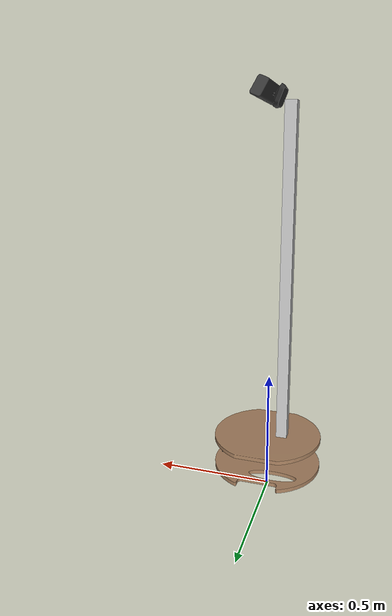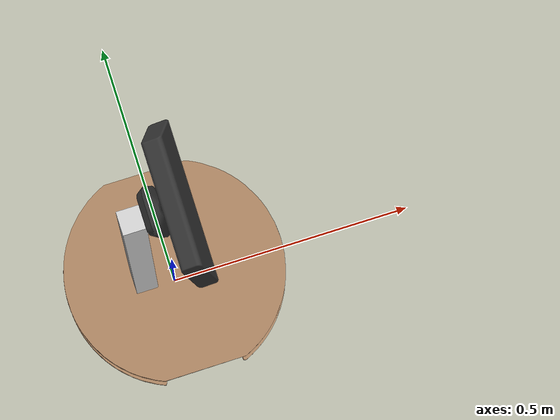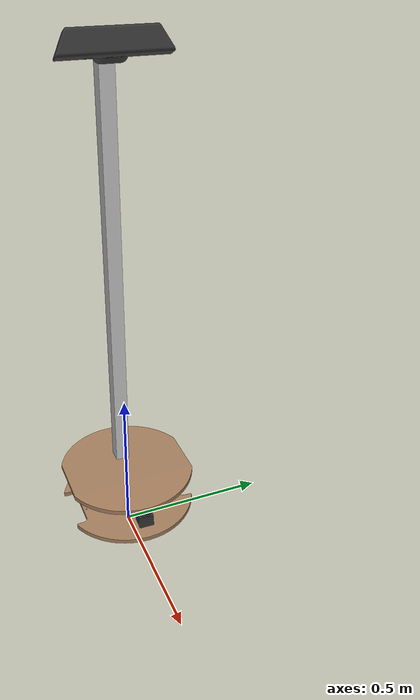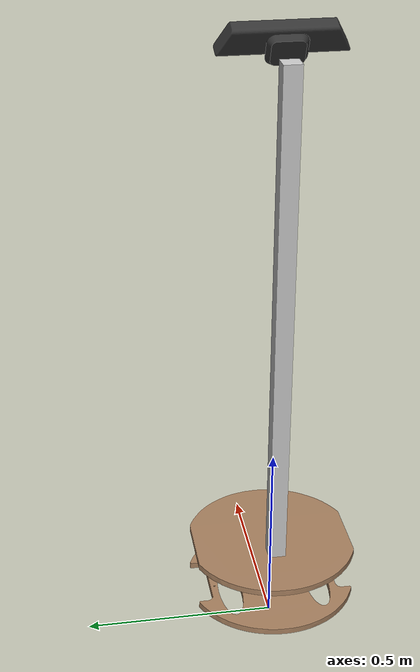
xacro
<?xml version="1.0"?>

<robot name="mitro">
    <!-- Properties (Constants) -->
    <property name="M_PI" value="3.14159265359"/>
    <property name="base_diameter" value="0.4572"/>
    <property name="base_plate_lift" value="0.112"/> <!-- lift top top of plate -->
    <property name="base_plate_height" value="0.0123"/>
    <property name="top_plate_lift" value="0.121"/> <!-- lift to top of plate -->
    <property name="top_plate_height" value="0.0066"/>
    <property name="hokuyo_scan_height" value="0.056"/>
    <property name="sonar_scan_height" value="0.037"/>
    <property name="pole_length" value="1.45"/>
    <property name="pole_x_offset" value="-0.0611"/>
    <property name="kinect_pitch_angle" value="1.18"/>
    <property name="kinect_roll_angle" value="0.06"/>
    <property name="kinect_yaw_angle" value="0.02"/>

    <macro name="mitro">

      <link name="base_link">
      </link>

      <link name="base_plate">
        <visual>
          <origin xyz="0 0 -${base_plate_height}" rpy="0 0 0" />
          <geometry>
            <mesh filename="package://mitro_description/meshes/base_plate.stl"/>
          </geometry>
	  <material name="wood">
	    <color rgba="0.65 0.5 0.37 1"/>
	  </material>
        </visual>
      </link>

      <joint name="base_plate_joint" type="fixed">
        <origin xyz="0 0 ${base_plate_lift}"/>
        <parent link="base_link"/>
        <child link="base_plate"/>
      </joint>

      <link name="base_sonar">
      </link>

      <joint name="base_sonar_joint" type="fixed">
        <origin xyz="0 0 ${sonar_scan_height}"/>
        <parent link="base_plate"/>
        <child link="base_sonar"/>
      </joint>

      <link name="base_laser">
	<visual>
	  <origin xyz="0.0 0.0 ${-hokuyo_scan_height}" rpy="${M_PI/2} 0 ${M_PI/2}" />
	  <geometry>
	    <mesh filename="package://mitro_description/meshes/hokuyo_urg.stl"/>
	  </geometry>
	  <material name="dark grey">
	    <color rgba="0.2 0.2 0.2 1"/>
	  </material>
	</visual>
      </link>

      <joint name="base_laser_joint" type="fixed">
        <origin xyz="${base_diameter/2 - 0.030 - 0.025} 0.002 ${hokuyo_scan_height + 0.021}" rpy="0 0 -0.032" />
        <parent link="base_plate"/>
        <child link="base_laser"/>
      </joint>

      <link name="top_plate">
        <visual>
          <origin xyz="0 0 -${top_plate_height}" rpy="0 0 0" />
          <geometry>
            <mesh filename="package://mitro_description/meshes/top_plate.stl"/>
          </geometry>
	  <material name="wood">
	    <color rgba="0.65 0.5 0.37 1"/>
	  </material>
        </visual>
      </link>

      <joint name="top_plate_joint" type="fixed">
        <origin xyz="0 0 ${top_plate_lift}"/>
        <parent link="base_plate"/>
        <child link="top_plate"/>
      </joint>

      <link name="base_pole_link" />
      <joint name="base_pole_joint" type="fixed">
	<origin xyz="${pole_x_offset} 0 0" rpy="0 0 0"/>
	<parent link="base_plate"/>
	<child link="base_pole_link"/>
      </joint>

      <link name="top_pole_link">
        <visual>
          <origin xyz="0 0 -${pole_length/2}" rpy="0 0 0" />
          <geometry>
	    <box size="0.045 0.045 ${pole_length}"/>
          </geometry>
	  <material name="aluminium">
	    <color rgba="0.8 0.8 0.8 1"/>
	  </material>
        </visual>
      </link>

      <joint name="top_pole_joint" type="fixed">
	<origin xyz="0 0 ${pole_length}" rpy="0 0 0"/>
	<parent link="base_pole_link"/>
	<child link="top_pole_link"/>
      </joint>

<!-- kinect -->

      <link name="kinect_model_link">
	<visual>
	  <origin xyz="0 0 0" rpy="0 0 0" />
	  <geometry>
	    <mesh filename="package://mitro_description/meshes/kinect.stl"/>
	  </geometry>
	  <material name="dark grey">
	    <color rgba="0.2 0.2 0.2 1"/>
	  </material>
	</visual>
      </link>

      <joint name="kinect_model_joint" type="fixed">
        <origin xyz="0.10 0 0" rpy="0 ${kinect_pitch_angle} 0"/>
        <parent link="top_pole_link"/>
        <child link="kinect_model_link"/>
      </joint>

      <link name="kinect_link"/>
      <joint name="kinect_joint" type="fixed">
        <origin xyz="0.11 -0.08 0" rpy="${kinect_roll_angle} ${kinect_pitch_angle} ${kinect_yaw_angle}"/> <!-- TODO: requires meassurement -->
        <parent link="top_pole_link"/>
        <child link="kinect_link"/>
      </joint>

      <link name="kinect_depth_frame"/>
      <joint name="kinect_depth_frame_joint" type="fixed">
	<origin xyz="0 0.049 0"/>
	<parent link="kinect_link"/>
	<child link="kinect_depth_frame"/>
      </joint>

      <link name="kinect_rgb_frame"/>
      <joint name="kinect_rgb_frame_joint" type="fixed">
	<origin xyz="0 0.022 0"/>
	<parent link="kinect_link"/>
	<child link="kinect_rgb_frame"/>
      </joint>

      <link name="kinect_depth_optical_frame"/>
      <joint name="kinect_depth_frame_optical_joint" type="fixed">
	<origin xyz="0 0 0" rpy="-${M_PI/2} 0 -${M_PI/2}"/>
	<parent link="kinect_depth_frame"/>
	<child link="kinect_depth_optical_frame"/>
      </joint>

      <link name="kinect_rgb_optical_frame"/>
      <joint name="kinect_rgb_frame_optical_joint" type="fixed">
	<origin xyz="0 0 0" rpy="-${M_PI/2} 0 -${M_PI/2}"/>
	<parent link="kinect_rgb_frame"/>
	<child link="kinect_rgb_optical_frame"/>
      </joint>

    </macro>

    <mitro />

</robot>
